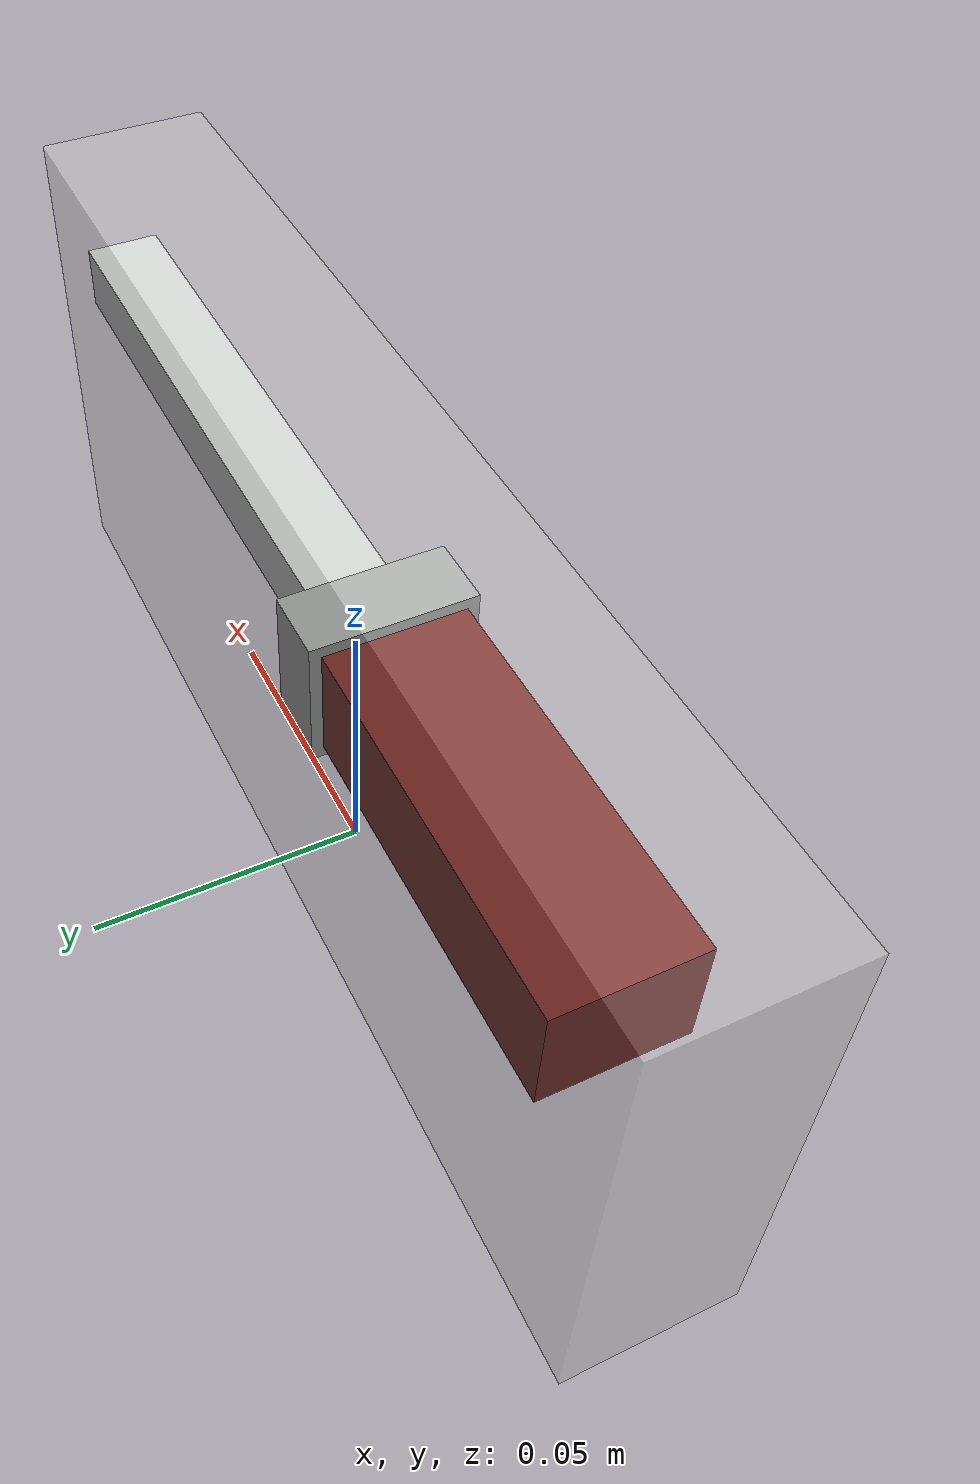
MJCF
<mujoco model="custom_knife">
  <worldbody>
    <body>
      <body name="object">
        <geom
          conaffinity="0"
          contype="0"
          group="1"
          pos="0.040 0 0.055"
          rgba="0.82 0.84 0.82 1"
          size="0.070 0.007 0.006"
          type="box"
        />
        <geom
          conaffinity="0"
          contype="0"
          group="1"
          pos="-0.045 0 0.055"
          rgba="0.42 0.05 0.025 1"
          size="0.035 0.012 0.010"
          type="box"
        />
        <geom
          conaffinity="0"
          contype="0"
          group="1"
          pos="-0.008 0 0.055"
          rgba="0.62 0.64 0.62 1"
          size="0.006 0.014 0.012"
          type="box"
        />
        <geom
          density="100"
          friction="0.95 0.3 0.1"
          group="0"
          pos="0 0 0.045"
          rgba="0.8 0.8 0.8 0.3"
          size="0.100 0.015 0.045"
          solimp="0.998 0.998 0.001"
          solref="0.001 1"
          type="box"
        />
      </body>
      <site rgba="0 0 0 0" size="0.005" pos="0 0 -0.025" name="bottom_site" />
      <site rgba="0 0 0 0" size="0.005" pos="0 0 0.095" name="top_site" />
      <site rgba="0 0 0 0" size="0.005" pos="0.105 0 0" name="horizontal_radius_site" />
    </body>
  </worldbody>
</mujoco>
